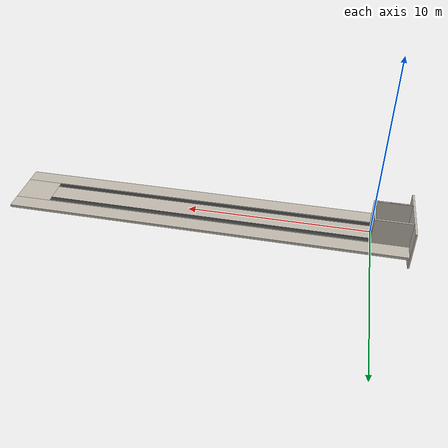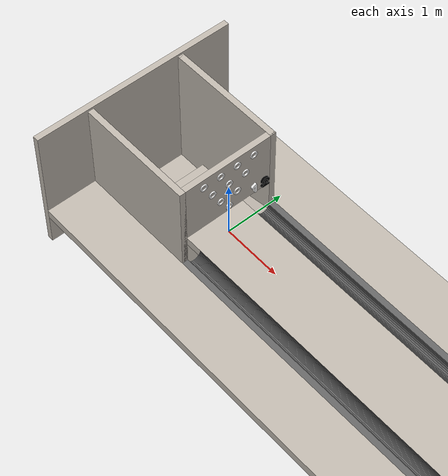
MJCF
<mujoco>

    <compiler meshdir="meshes"/>
	<option gravity="0 0 -9.81"/>

    <asset>
		<!-- import stl files -->

		<mesh file="Auffang.stl" />
		<mesh file="Auffang (1).stl" />
		<mesh file="Auffang (2).stl" />
		<mesh file="Auffang (3).stl" />
		<mesh file="Auffang (4).stl" />
		<mesh file="Auffang (5).stl" />

		<mesh file="rinne.stl" />
		<mesh file="rinne (1).stl" />
		<mesh file="rinne (2).stl" />
		<mesh file="rinne (3).stl" />
		<mesh file="rinne (4).stl" />
		<mesh file="rinne (5).stl" />
		<mesh file="rinne (6).stl" />
		<mesh file="rinne (7).stl" />
		<mesh file="rinne (8).stl" />
		<mesh file="rinne (9).stl" />
		<mesh file="rinne (10).stl" />
		<mesh file="rinne (11).stl" />
		<mesh file="rinne (12).stl" />
		<mesh file="rinne (13).stl" />
		<mesh file="rinne (14).stl" />
		<mesh file="rinne (15).stl" />
		<mesh file="rinne (16).stl" />
		<mesh file="rinne (17).stl" />
		<mesh file="rinne (18).stl" />
		<mesh file="rinne (19).stl" />
		<mesh file="rinne (20).stl" />
		<mesh file="rinne (21).stl" />
		<mesh file="rinne (22).stl" />
		<mesh file="rinne (23).stl" />
		<mesh file="rinne (24).stl" />
		<mesh file="rinne (25).stl" />
		<mesh file="rinne (26).stl" />
		<mesh file="rinne (27).stl" />
		<mesh file="rinne (28).stl" />
		<mesh file="rinne (29).stl" />
		<mesh file="rinne (30).stl" />
		<mesh file="rinne (31).stl" />
		<mesh file="rinne (32).stl" />
		<mesh file="rinne (33).stl" />
		<mesh file="rinne (34).stl" />
		<mesh file="rinne (35).stl" />
		<mesh file="rinne (36).stl" />
		<mesh file="rinne (37).stl" />

		<mesh file="bahn.stl" />

		<mesh file="anlaufplattform.stl" />

		<mesh file="PinLicht.stl" />
		<mesh file="PinLicht (1).stl" />
		<mesh file="PinLicht (2).stl" />
		<mesh file="PinLicht (3).stl" />
		<mesh file="PinLicht (4).stl" />
		<mesh file="PinLicht (5).stl" />
		<mesh file="PinLicht (6).stl" />
		<mesh file="PinLicht (7).stl" />
		<mesh file="PinLicht (8).stl" />
		<mesh file="PinLicht (9).stl" />

		<mesh file="LichtWurf1.stl" />
		<mesh file="LichtWurf2.stl" />

		<texture name="bahn" file="skins/bahn.png"/>
		<texture name="auffang" file="skins/auffang.png" />
		<texture name="anlaufplattform" file="skins/anlaufplattform.png"/>

		<material name="bahn" texture="bahn" specular="1" shininess="1"/>
		<material name="auffang" texture="auffang" specular="1" shininess="1" />
		<material name="anlaufplattform" texture="anlaufplattform" specular="1" shininess="1"/>

		<material name="rinne" rgba=".4 .4 .4 1"/>

		<material name="OFF" rgba="0 0 0 1"/>
		<material name="ON" rgba="1 1 1 1"/>

    </asset>

	<worldbody>

		<!-- light PINS -->
		<light directional="true" pos="0 .6 .49" dir="0 1 -1" />

		<body name="bowlingbahn" euler="0 0 90">

			<body name="rinne" pos="0 0 0">

				<geom type="mesh" mesh="rinne" material="rinne"/>
				<geom type="mesh" mesh="rinne (1)" material="rinne"/>
				<geom type="mesh" mesh="rinne (2)" material="rinne"/>
				<geom type="mesh" mesh="rinne (3)" material="rinne"/>
				<geom type="mesh" mesh="rinne (4)" material="rinne"/>
				<geom type="mesh" mesh="rinne (5)" material="rinne"/>
				<geom type="mesh" mesh="rinne (6)" material="rinne"/>
				<geom type="mesh" mesh="rinne (7)" material="rinne"/>
				<geom type="mesh" mesh="rinne (8)" material="rinne"/>
				<geom type="mesh" mesh="rinne (9)" material="rinne"/>
				<geom type="mesh" mesh="rinne (10)" material="rinne"/>
				<geom type="mesh" mesh="rinne (11)" material="rinne"/>
				<geom type="mesh" mesh="rinne (12)" material="rinne"/>
				<geom type="mesh" mesh="rinne (13)" material="rinne"/>
				<geom type="mesh" mesh="rinne (14)" material="rinne"/>
				<geom type="mesh" mesh="rinne (15)" material="rinne"/>
				<geom type="mesh" mesh="rinne (16)" material="rinne"/>
				<geom type="mesh" mesh="rinne (17)" material="rinne"/>
				<geom type="mesh" mesh="rinne (18)" material="rinne"/>
				<geom type="mesh" mesh="rinne (19)" material="rinne"/>
				<geom type="mesh" mesh="rinne (20)" material="rinne"/>
				<geom type="mesh" mesh="rinne (21)" material="rinne"/>
				<geom type="mesh" mesh="rinne (22)" material="rinne"/>
				<geom type="mesh" mesh="rinne (23)" material="rinne"/>
				<geom type="mesh" mesh="rinne (24)" material="rinne"/>
				<geom type="mesh" mesh="rinne (25)" material="rinne"/>
				<geom type="mesh" mesh="rinne (26)" material="rinne"/>
				<geom type="mesh" mesh="rinne (27)" material="rinne"/>
				<geom type="mesh" mesh="rinne (28)" material="rinne"/>
				<geom type="mesh" mesh="rinne (29)" material="rinne"/>
				<geom type="mesh" mesh="rinne (30)" material="rinne"/>
				<geom type="mesh" mesh="rinne (31)" material="rinne"/>
				<geom type="mesh" mesh="rinne (32)" material="rinne"/>
				<geom type="mesh" mesh="rinne (33)" material="rinne"/>
				<geom type="mesh" mesh="rinne (34)" material="rinne"/>
				<geom type="mesh" mesh="rinne (35)" material="rinne"/>
				<geom type="mesh" mesh="rinne (36)" material="rinne"/>
				<geom type="mesh" mesh="rinne (37)" material="rinne"/>

			</body>

			<body name="bahn">

				<geom name="rollarea" type="box" size="0.53	9.6 .075" pos=" 0 -8.4  -.075" friction="0" material="bahn" condim="4"/>

			</body>

			<body name="anlaufplattform">

				<geom type="box" size=".865	1 .075" pos=" 0 -19  -.075" material="anlaufplattform" condim="4"/>
				<geom type="box" size=".4325 11 .075" pos="1.2975 -9 -.075" material="auffang" condim="4"/>
				<geom type="box" size=".4325 11 .075" pos="-1.2975 -9 -.075" material="auffang" condim="4"/>
			</body>

			<body name="Auffang">

				<geom type="mesh" mesh="Auffang (1)" material="auffang" condim="1" priority="1"/>
				<geom type="mesh" mesh="Auffang (2)" material="auffang" condim="1" priority="1"/>
				<geom type="mesh" mesh="Auffang (3)" material="auffang" condim="1" priority="1"/>
				<geom type="mesh" mesh="Auffang (4)" material="auffang" condim="1" priority="1"/>

				<geom type="box" size=".765 .05 .5" pos="0 .05 1" material="auffang" condim="1" priority="1"/>
				<geom type="box" size=".05 1 1.075" pos=".815  1 .425" material="auffang" condim="1" priority="1"/>
				<geom type="box" size=".05 1 1.075" pos="-.815  1 .425" material="auffang" condim="1" priority="1"/>
				<geom type="box" size=".865 1 .05" pos="0 1 -.70" material="auffang" condim="1" priority="1"/>
				<geom type="box" size="1.73 .05 1.125" pos="0  2.05 .415" material="auffang" condim="1" priority="1"/>

			</body>

			<body name="PinLicht1" pos="0 0 0">
				<geom name="PinLicht1" type="mesh" mesh="PinLicht" material="ON"/>
			</body>

			<body name="PinLicht2" pos="0 0 0">
				<geom name="PinLicht2" type="mesh" mesh="PinLicht (1)" material="ON"/>
			</body>

			<body name="PinLicht3" pos="0 0 0">
				<geom name="PinLicht3" type="mesh" mesh="PinLicht (2)" material="ON"/>
			</body>

			<body name="PinLicht4" pos="0 0 0">
				<geom name="PinLicht4" type="mesh" mesh="PinLicht (3)" material="ON"/>
			</body>

			<body name="PinLicht5" pos="0 0 0">
				<geom name="PinLicht5" type="mesh" mesh="PinLicht (4)" material="ON"/>
			</body>

			<body name="PinLicht6" pos="0 0 0">
				<geom name="PinLicht6" type="mesh" mesh="PinLicht (5)" material="ON"/>
			</body>

			<body name="PinLicht7" pos="0 0 0">
				<geom name="PinLicht7" type="mesh" mesh="PinLicht (6)" material="ON"/>
			</body>

			<body name="PinLicht8" pos="0 0 0">
				<geom name="PinLicht8" type="mesh" mesh="PinLicht (7)" material="ON"/>
			</body>

			<body name="PinLicht9" pos="0 0 0">
				<geom name="PinLicht9" type="mesh" mesh="PinLicht (8)" material="ON"/>
			</body>

			<body name="PinLicht10" pos="0 0 0">
				<geom name="PinLicht10" type="mesh" mesh="PinLicht (9)" material="ON"/>
			</body>

			<body name="LichtWurf1" pos="0 0 0">
				<geom name="Lichtwurf1" type="mesh" mesh="LichtWurf1" material="ON"/>
			</body>

			<body name="LichtWurf2" pos="0 0 0">
				<geom name="Lichtwurf2" type="mesh" mesh="LichtWurf2" material="OFF"/>
			</body>

		</body>

	</worldbody>

</mujoco>
